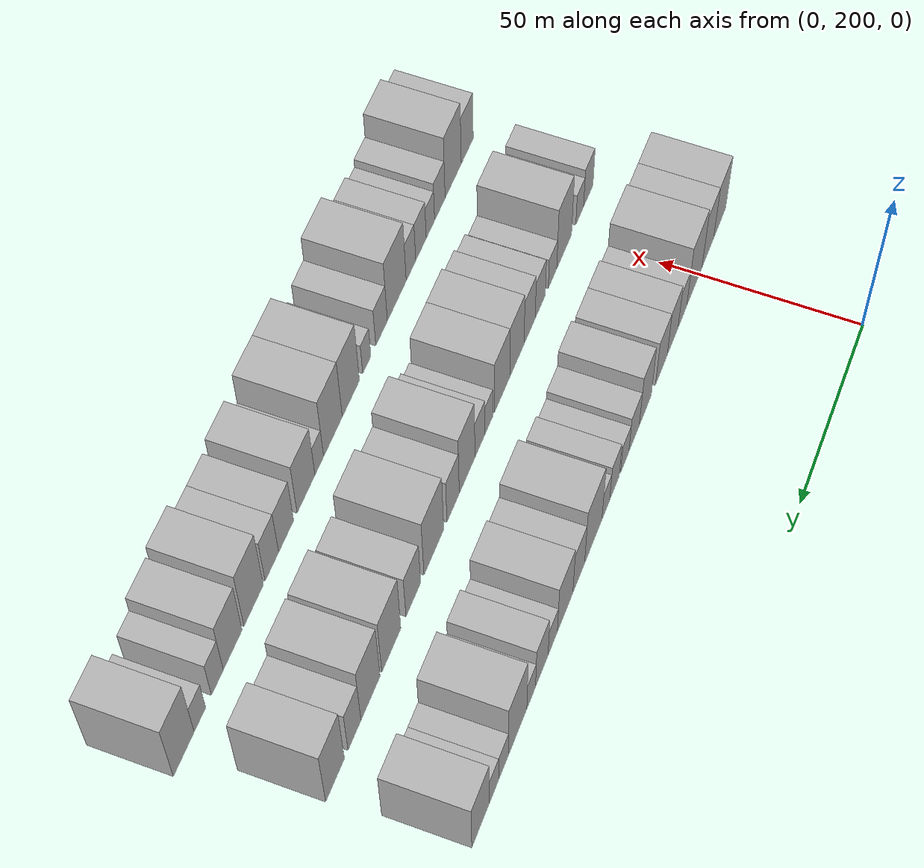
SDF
<sdf version="1.6">
 <world name="default">
  <model name="building_61">
   <static>1</static>
   <pose>50.0000 184.4445 0 0.000000 0.000000 0.000000</pose>
   <link name="link">
    <pose>0 0 10.50 0 0 0</pose>
    <collision name="collision"><geometry><box><size>20.0000 9.5456 21.0000</size></box></geometry></collision>
    <visual name="visual">
     <cast_shadows>0</cast_shadows>
     <geometry><box><size>20.0000 9.5456 21.0000</size></box></geometry>
     <material>
      <script>
       <uri>model://HANNAS_wall/materials/scripts</uri>
       <uri>model://HANNAS_wall/materials/textures</uri>
       <name>vrc/HANNAS_wall</name>
      </script>
     </material>
    </visual>
   </link>
  </model>
  <model name="building_62">
   <static>1</static>
   <pose>50.0000 193.6088 0 0.000000 0.000000 0.000000</pose>
   <link name="link">
    <pose>0 0 10.50 0 0 0</pose>
    <collision name="collision"><geometry><box><size>20.0000 8.7831 21.0000</size></box></geometry></collision>
    <visual name="visual">
     <cast_shadows>0</cast_shadows>
     <geometry><box><size>20.0000 8.7831 21.0000</size></box></geometry>
     <material>
      <script>
       <uri>model://HANNAS_wall/materials/scripts</uri>
       <uri>model://HANNAS_wall/materials/textures</uri>
       <name>vrc/HANNAS_wall</name>
      </script>
     </material>
    </visual>
   </link>
  </model>
  <model name="building_63">
   <static>1</static>
   <pose>50.0000 203.7745 0 0.000000 0.000000 0.000000</pose>
   <link name="link">
    <pose>0 0 12.00 0 0 0</pose>
    <collision name="collision"><geometry><box><size>20.0000 11.5485 24.0000</size></box></geometry></collision>
    <visual name="visual">
     <cast_shadows>0</cast_shadows>
     <geometry><box><size>20.0000 11.5485 24.0000</size></box></geometry>
     <material>
      <script>
       <uri>model://HANNAS_wall/materials/scripts</uri>
       <uri>model://HANNAS_wall/materials/textures</uri>
       <name>vrc/HANNAS_wall</name>
      </script>
     </material>
    </visual>
   </link>
  </model>
  <model name="building_64">
   <static>1</static>
   <pose>50.0000 212.7617 0 0.000000 0.000000 0.000000</pose>
   <link name="link">
    <pose>0 0 7.50 0 0 0</pose>
    <collision name="collision"><geometry><box><size>20.0000 6.4258 15.0000</size></box></geometry></collision>
    <visual name="visual">
     <cast_shadows>0</cast_shadows>
     <geometry><box><size>20.0000 6.4258 15.0000</size></box></geometry>
     <material>
      <script>
       <uri>model://HANNAS_wall/materials/scripts</uri>
       <uri>model://HANNAS_wall/materials/textures</uri>
       <name>vrc/HANNAS_wall</name>
      </script>
     </material>
    </visual>
   </link>
  </model>
  <model name="building_65">
   <static>1</static>
   <pose>50.0000 219.9266 0 0.000000 0.000000 0.000000</pose>
   <link name="link">
    <pose>0 0 9.00 0 0 0</pose>
    <collision name="collision"><geometry><box><size>20.0000 7.9040 18.0000</size></box></geometry></collision>
    <visual name="visual">
     <cast_shadows>0</cast_shadows>
     <geometry><box><size>20.0000 7.9040 18.0000</size></box></geometry>
     <material>
      <script>
       <uri>model://HANNAS_wall/materials/scripts</uri>
       <uri>model://HANNAS_wall/materials/textures</uri>
       <name>vrc/HANNAS_wall</name>
      </script>
     </material>
    </visual>
   </link>
  </model>
  <model name="building_66">
   <static>1</static>
   <pose>50.0000 228.1158 0 0.000000 0.000000 0.000000</pose>
   <link name="link">
    <pose>0 0 9.00 0 0 0</pose>
    <collision name="collision"><geometry><box><size>20.0000 8.4743 18.0000</size></box></geometry></collision>
    <visual name="visual">
     <cast_shadows>0</cast_shadows>
     <geometry><box><size>20.0000 8.4743 18.0000</size></box></geometry>
     <material>
      <script>
       <uri>model://HANNAS_wall/materials/scripts</uri>
       <uri>model://HANNAS_wall/materials/textures</uri>
       <name>vrc/HANNAS_wall</name>
      </script>
     </material>
    </visual>
   </link>
  </model>
  <model name="building_67">
   <static>1</static>
   <pose>50.0000 239.6521 0 0.000000 0.000000 0.000000</pose>
   <link name="link">
    <pose>0 0 10.50 0 0 0</pose>
    <collision name="collision"><geometry><box><size>20.0000 8.5982 21.0000</size></box></geometry></collision>
    <visual name="visual">
     <cast_shadows>0</cast_shadows>
     <geometry><box><size>20.0000 8.5982 21.0000</size></box></geometry>
     <material>
      <script>
       <uri>model://HANNAS_wall/materials/scripts</uri>
       <uri>model://HANNAS_wall/materials/textures</uri>
       <name>vrc/HANNAS_wall</name>
      </script>
     </material>
    </visual>
   </link>
  </model>
  <model name="building_68">
   <static>1</static>
   <pose>50.0000 247.5567 0 0.000000 0.000000 0.000000</pose>
   <link name="link">
    <pose>0 0 7.50 0 0 0</pose>
    <collision name="collision"><geometry><box><size>20.0000 7.2110 15.0000</size></box></geometry></collision>
    <visual name="visual">
     <cast_shadows>0</cast_shadows>
     <geometry><box><size>20.0000 7.2110 15.0000</size></box></geometry>
     <material>
      <script>
       <uri>model://HANNAS_wall/materials/scripts</uri>
       <uri>model://HANNAS_wall/materials/textures</uri>
       <name>vrc/HANNAS_wall</name>
      </script>
     </material>
    </visual>
   </link>
  </model>
  <model name="building_69">
   <static>1</static>
   <pose>50.0000 254.0438 0 0.000000 0.000000 0.000000</pose>
   <link name="link">
    <pose>0 0 6.00 0 0 0</pose>
    <collision name="collision"><geometry><box><size>20.0000 5.7632 12.0000</size></box></geometry></collision>
    <visual name="visual">
     <cast_shadows>0</cast_shadows>
     <geometry><box><size>20.0000 5.7632 12.0000</size></box></geometry>
     <material>
      <script>
       <uri>model://HANNAS_wall/materials/scripts</uri>
       <uri>model://HANNAS_wall/materials/textures</uri>
       <name>vrc/HANNAS_wall</name>
      </script>
     </material>
    </visual>
   </link>
  </model>
  <model name="building_70">
   <static>1</static>
   <pose>50.0000 261.1158 0 0.000000 0.000000 0.000000</pose>
   <link name="link">
    <pose>0 0 7.50 0 0 0</pose>
    <collision name="collision"><geometry><box><size>20.0000 6.3809 15.0000</size></box></geometry></collision>
    <visual name="visual">
     <cast_shadows>0</cast_shadows>
     <geometry><box><size>20.0000 6.3809 15.0000</size></box></geometry>
     <material>
      <script>
       <uri>model://HANNAS_wall/materials/scripts</uri>
       <uri>model://HANNAS_wall/materials/textures</uri>
       <name>vrc/HANNAS_wall</name>
      </script>
     </material>
    </visual>
   </link>
  </model>
  <model name="building_71">
   <static>1</static>
   <pose>50.0000 266.9462 0 0.000000 0.000000 0.000000</pose>
   <link name="link">
    <pose>0 0 6.00 0 0 0</pose>
    <collision name="collision"><geometry><box><size>20.0000 5.2798 12.0000</size></box></geometry></collision>
    <visual name="visual">
     <cast_shadows>0</cast_shadows>
     <geometry><box><size>20.0000 5.2798 12.0000</size></box></geometry>
     <material>
      <script>
       <uri>model://HANNAS_wall/materials/scripts</uri>
       <uri>model://HANNAS_wall/materials/textures</uri>
       <name>vrc/HANNAS_wall</name>
      </script>
     </material>
    </visual>
   </link>
  </model>
  <model name="building_72">
   <static>1</static>
   <pose>50.0000 275.3445 0 0.000000 0.000000 0.000000</pose>
   <link name="link">
    <pose>0 0 12.00 0 0 0</pose>
    <collision name="collision"><geometry><box><size>20.0000 11.5169 24.0000</size></box></geometry></collision>
    <visual name="visual">
     <cast_shadows>0</cast_shadows>
     <geometry><box><size>20.0000 11.5169 24.0000</size></box></geometry>
     <material>
      <script>
       <uri>model://HANNAS_wall/materials/scripts</uri>
       <uri>model://HANNAS_wall/materials/textures</uri>
       <name>vrc/HANNAS_wall</name>
      </script>
     </material>
    </visual>
   </link>
  </model>
  <model name="building_73">
   <static>1</static>
   <pose>50.0000 284.9292 0 0.000000 0.000000 0.000000</pose>
   <link name="link">
    <pose>0 0 9.00 0 0 0</pose>
    <collision name="collision"><geometry><box><size>20.0000 7.6525 18.0000</size></box></geometry></collision>
    <visual name="visual">
     <cast_shadows>0</cast_shadows>
     <geometry><box><size>20.0000 7.6525 18.0000</size></box></geometry>
     <material>
      <script>
       <uri>model://HANNAS_wall/materials/scripts</uri>
       <uri>model://HANNAS_wall/materials/textures</uri>
       <name>vrc/HANNAS_wall</name>
      </script>
     </material>
    </visual>
   </link>
  </model>
  <model name="building_74">
   <static>1</static>
   <pose>50.0000 293.7553 0 0.000000 0.000000 0.000000</pose>
   <link name="link">
    <pose>0 0 10.50 0 0 0</pose>
    <collision name="collision"><geometry><box><size>20.0000 9.9997 21.0000</size></box></geometry></collision>
    <visual name="visual">
     <cast_shadows>0</cast_shadows>
     <geometry><box><size>20.0000 9.9997 21.0000</size></box></geometry>
     <material>
      <script>
       <uri>model://HANNAS_wall/materials/scripts</uri>
       <uri>model://HANNAS_wall/materials/textures</uri>
       <name>vrc/HANNAS_wall</name>
      </script>
     </material>
    </visual>
   </link>
  </model>
  <model name="building_75">
   <static>1</static>
   <pose>50.0000 301.6766 0 0.000000 0.000000 0.000000</pose>
   <link name="link">
    <pose>0 0 6.00 0 0 0</pose>
    <collision name="collision"><geometry><box><size>20.0000 5.8428 12.0000</size></box></geometry></collision>
    <visual name="visual">
     <cast_shadows>0</cast_shadows>
     <geometry><box><size>20.0000 5.8428 12.0000</size></box></geometry>
     <material>
      <script>
       <uri>model://HANNAS_wall/materials/scripts</uri>
       <uri>model://HANNAS_wall/materials/textures</uri>
       <name>vrc/HANNAS_wall</name>
      </script>
     </material>
    </visual>
   </link>
  </model>
  <model name="building_76">
   <static>1</static>
   <pose>50.0000 308.5306 0 0.000000 0.000000 0.000000</pose>
   <link name="link">
    <pose>0 0 9.00 0 0 0</pose>
    <collision name="collision"><geometry><box><size>20.0000 7.8651 18.0000</size></box></geometry></collision>
    <visual name="visual">
     <cast_shadows>0</cast_shadows>
     <geometry><box><size>20.0000 7.8651 18.0000</size></box></geometry>
     <material>
      <script>
       <uri>model://HANNAS_wall/materials/scripts</uri>
       <uri>model://HANNAS_wall/materials/textures</uri>
       <name>vrc/HANNAS_wall</name>
      </script>
     </material>
    </visual>
   </link>
  </model>
  <model name="building_77">
   <static>1</static>
   <pose>50.0000 315.1608 0 0.000000 0.000000 0.000000</pose>
   <link name="link">
    <pose>0 0 6.00 0 0 0</pose>
    <collision name="collision"><geometry><box><size>20.0000 5.3953 12.0000</size></box></geometry></collision>
    <visual name="visual">
     <cast_shadows>0</cast_shadows>
     <geometry><box><size>20.0000 5.3953 12.0000</size></box></geometry>
     <material>
      <script>
       <uri>model://HANNAS_wall/materials/scripts</uri>
       <uri>model://HANNAS_wall/materials/textures</uri>
       <name>vrc/HANNAS_wall</name>
      </script>
     </material>
    </visual>
   </link>
  </model>
  <model name="building_78">
   <static>1</static>
   <pose>50.0000 323.4740 0 0.000000 0.000000 0.000000</pose>
   <link name="link">
    <pose>0 0 12.00 0 0 0</pose>
    <collision name="collision"><geometry><box><size>20.0000 11.2312 24.0000</size></box></geometry></collision>
    <visual name="visual">
     <cast_shadows>0</cast_shadows>
     <geometry><box><size>20.0000 11.2312 24.0000</size></box></geometry>
     <material>
      <script>
       <uri>model://HANNAS_wall/materials/scripts</uri>
       <uri>model://HANNAS_wall/materials/textures</uri>
       <name>vrc/HANNAS_wall</name>
      </script>
     </material>
    </visual>
   </link>
  </model>
  <model name="building_79">
   <static>1</static>
   <pose>50.0000 332.0207 0 0.000000 0.000000 0.000000</pose>
   <link name="link">
    <pose>0 0 6.00 0 0 0</pose>
    <collision name="collision"><geometry><box><size>20.0000 5.8622 12.0000</size></box></geometry></collision>
    <visual name="visual">
     <cast_shadows>0</cast_shadows>
     <geometry><box><size>20.0000 5.8622 12.0000</size></box></geometry>
     <material>
      <script>
       <uri>model://HANNAS_wall/materials/scripts</uri>
       <uri>model://HANNAS_wall/materials/textures</uri>
       <name>vrc/HANNAS_wall</name>
      </script>
     </material>
    </visual>
   </link>
  </model>
  <model name="building_80">
   <static>1</static>
   <pose>50.0000 337.6700 0 0.000000 0.000000 0.000000</pose>
   <link name="link">
    <pose>0 0 6.00 0 0 0</pose>
    <collision name="collision"><geometry><box><size>20.0000 5.4363 12.0000</size></box></geometry></collision>
    <visual name="visual">
     <cast_shadows>0</cast_shadows>
     <geometry><box><size>20.0000 5.4363 12.0000</size></box></geometry>
     <material>
      <script>
       <uri>model://HANNAS_wall/materials/scripts</uri>
       <uri>model://HANNAS_wall/materials/textures</uri>
       <name>vrc/HANNAS_wall</name>
      </script>
     </material>
    </visual>
   </link>
  </model>
  <model name="building_81">
   <static>1</static>
   <pose>50.0000 345.5345 0 0.000000 0.000000 0.000000</pose>
   <link name="link">
    <pose>0 0 10.50 0 0 0</pose>
    <collision name="collision"><geometry><box><size>20.0000 10.2925 21.0000</size></box></geometry></collision>
    <visual name="visual">
     <cast_shadows>0</cast_shadows>
     <geometry><box><size>20.0000 10.2925 21.0000</size></box></geometry>
     <material>
      <script>
       <uri>model://HANNAS_wall/materials/scripts</uri>
       <uri>model://HANNAS_wall/materials/textures</uri>
       <name>vrc/HANNAS_wall</name>
      </script>
     </material>
    </visual>
   </link>
  </model>
  <model name="building_140">
   <static>1</static>
   <pose>82.0000 187.9206 0 0.000000 0.000000 0.000000</pose>
   <link name="link">
    <pose>0 0 7.50 0 0 0</pose>
    <collision name="collision"><geometry><box><size>20.0000 6.8366 15.0000</size></box></geometry></collision>
    <visual name="visual">
     <cast_shadows>0</cast_shadows>
     <geometry><box><size>20.0000 6.8366 15.0000</size></box></geometry>
     <material>
      <script>
       <uri>model://HANNAS_wall/materials/scripts</uri>
       <uri>model://HANNAS_wall/materials/textures</uri>
       <name>vrc/HANNAS_wall</name>
      </script>
     </material>
    </visual>
   </link>
  </model>
  <model name="building_141">
   <static>1</static>
   <pose>82.0000 194.1145 0 0.000000 0.000000 0.000000</pose>
   <link name="link">
    <pose>0 0 6.00 0 0 0</pose>
    <collision name="collision"><geometry><box><size>20.0000 5.5513 12.0000</size></box></geometry></collision>
    <visual name="visual">
     <cast_shadows>0</cast_shadows>
     <geometry><box><size>20.0000 5.5513 12.0000</size></box></geometry>
     <material>
      <script>
       <uri>model://HANNAS_wall/materials/scripts</uri>
       <uri>model://HANNAS_wall/materials/textures</uri>
       <name>vrc/HANNAS_wall</name>
      </script>
     </material>
    </visual>
   </link>
  </model>
  <model name="building_142">
   <static>1</static>
   <pose>82.0000 205.0983 0 0.000000 0.000000 0.000000</pose>
   <link name="link">
    <pose>0 0 12.00 0 0 0</pose>
    <collision name="collision"><geometry><box><size>20.0000 10.4162 24.0000</size></box></geometry></collision>
    <visual name="visual">
     <cast_shadows>0</cast_shadows>
     <geometry><box><size>20.0000 10.4162 24.0000</size></box></geometry>
     <material>
      <script>
       <uri>model://HANNAS_wall/materials/scripts</uri>
       <uri>model://HANNAS_wall/materials/textures</uri>
       <name>vrc/HANNAS_wall</name>
      </script>
     </material>
    </visual>
   </link>
  </model>
  <model name="building_143">
   <static>1</static>
   <pose>82.0000 213.2416 0 0.000000 0.000000 0.000000</pose>
   <link name="link">
    <pose>0 0 6.00 0 0 0</pose>
    <collision name="collision"><geometry><box><size>20.0000 5.8705 12.0000</size></box></geometry></collision>
    <visual name="visual">
     <cast_shadows>0</cast_shadows>
     <geometry><box><size>20.0000 5.8705 12.0000</size></box></geometry>
     <material>
      <script>
       <uri>model://HANNAS_wall/materials/scripts</uri>
       <uri>model://HANNAS_wall/materials/textures</uri>
       <name>vrc/HANNAS_wall</name>
      </script>
     </material>
    </visual>
   </link>
  </model>
  <model name="building_144">
   <static>1</static>
   <pose>82.0000 221.6229 0 0.000000 0.000000 0.000000</pose>
   <link name="link">
    <pose>0 0 7.50 0 0 0</pose>
    <collision name="collision"><geometry><box><size>20.0000 6.8921 15.0000</size></box></geometry></collision>
    <visual name="visual">
     <cast_shadows>0</cast_shadows>
     <geometry><box><size>20.0000 6.8921 15.0000</size></box></geometry>
     <material>
      <script>
       <uri>model://HANNAS_wall/materials/scripts</uri>
       <uri>model://HANNAS_wall/materials/textures</uri>
       <name>vrc/HANNAS_wall</name>
      </script>
     </material>
    </visual>
   </link>
  </model>
  <model name="building_145">
   <static>1</static>
   <pose>82.0000 228.8286 0 0.000000 0.000000 0.000000</pose>
   <link name="link">
    <pose>0 0 9.00 0 0 0</pose>
    <collision name="collision"><geometry><box><size>20.0000 7.5194 18.0000</size></box></geometry></collision>
    <visual name="visual">
     <cast_shadows>0</cast_shadows>
     <geometry><box><size>20.0000 7.5194 18.0000</size></box></geometry>
     <material>
      <script>
       <uri>model://HANNAS_wall/materials/scripts</uri>
       <uri>model://HANNAS_wall/materials/textures</uri>
       <name>vrc/HANNAS_wall</name>
      </script>
     </material>
    </visual>
   </link>
  </model>
  <model name="building_146">
   <static>1</static>
   <pose>82.0000 237.3323 0 0.000000 0.000000 0.000000</pose>
   <link name="link">
    <pose>0 0 10.50 0 0 0</pose>
    <collision name="collision"><geometry><box><size>20.0000 9.4879 21.0000</size></box></geometry></collision>
    <visual name="visual">
     <cast_shadows>0</cast_shadows>
     <geometry><box><size>20.0000 9.4879 21.0000</size></box></geometry>
     <material>
      <script>
       <uri>model://HANNAS_wall/materials/scripts</uri>
       <uri>model://HANNAS_wall/materials/textures</uri>
       <name>vrc/HANNAS_wall</name>
      </script>
     </material>
    </visual>
   </link>
  </model>
  <model name="building_147">
   <static>1</static>
   <pose>82.0000 247.1323 0 0.000000 0.000000 0.000000</pose>
   <link name="link">
    <pose>0 0 10.50 0 0 0</pose>
    <collision name="collision"><geometry><box><size>20.0000 10.1121 21.0000</size></box></geometry></collision>
    <visual name="visual">
     <cast_shadows>0</cast_shadows>
     <geometry><box><size>20.0000 10.1121 21.0000</size></box></geometry>
     <material>
      <script>
       <uri>model://HANNAS_wall/materials/scripts</uri>
       <uri>model://HANNAS_wall/materials/textures</uri>
       <name>vrc/HANNAS_wall</name>
      </script>
     </material>
    </visual>
   </link>
  </model>
  <model name="building_148">
   <static>1</static>
   <pose>82.0000 255.6846 0 0.000000 0.000000 0.000000</pose>
   <link name="link">
    <pose>0 0 6.00 0 0 0</pose>
    <collision name="collision"><geometry><box><size>20.0000 4.9925 12.0000</size></box></geometry></collision>
    <visual name="visual">
     <cast_shadows>0</cast_shadows>
     <geometry><box><size>20.0000 4.9925 12.0000</size></box></geometry>
     <material>
      <script>
       <uri>model://HANNAS_wall/materials/scripts</uri>
       <uri>model://HANNAS_wall/materials/textures</uri>
       <name>vrc/HANNAS_wall</name>
      </script>
     </material>
    </visual>
   </link>
  </model>
  <model name="building_149">
   <static>1</static>
   <pose>82.0000 261.3965 0 0.000000 0.000000 0.000000</pose>
   <link name="link">
    <pose>0 0 7.50 0 0 0</pose>
    <collision name="collision"><geometry><box><size>20.0000 6.4314 15.0000</size></box></geometry></collision>
    <visual name="visual">
     <cast_shadows>0</cast_shadows>
     <geometry><box><size>20.0000 6.4314 15.0000</size></box></geometry>
     <material>
      <script>
       <uri>model://HANNAS_wall/materials/scripts</uri>
       <uri>model://HANNAS_wall/materials/textures</uri>
       <name>vrc/HANNAS_wall</name>
      </script>
     </material>
    </visual>
   </link>
  </model>
  <model name="building_150">
   <static>1</static>
   <pose>82.0000 269.5343 0 0.000000 0.000000 0.000000</pose>
   <link name="link">
    <pose>0 0 12.00 0 0 0</pose>
    <collision name="collision"><geometry><box><size>20.0000 9.8444 24.0000</size></box></geometry></collision>
    <visual name="visual">
     <cast_shadows>0</cast_shadows>
     <geometry><box><size>20.0000 9.8444 24.0000</size></box></geometry>
     <material>
      <script>
       <uri>model://HANNAS_wall/materials/scripts</uri>
       <uri>model://HANNAS_wall/materials/textures</uri>
       <name>vrc/HANNAS_wall</name>
      </script>
     </material>
    </visual>
   </link>
  </model>
  <model name="building_151">
   <static>1</static>
   <pose>82.0000 278.2891 0 0.000000 0.000000 0.000000</pose>
   <link name="link">
    <pose>0 0 9.00 0 0 0</pose>
    <collision name="collision"><geometry><box><size>20.0000 7.6652 18.0000</size></box></geometry></collision>
    <visual name="visual">
     <cast_shadows>0</cast_shadows>
     <geometry><box><size>20.0000 7.6652 18.0000</size></box></geometry>
     <material>
      <script>
       <uri>model://HANNAS_wall/materials/scripts</uri>
       <uri>model://HANNAS_wall/materials/textures</uri>
       <name>vrc/HANNAS_wall</name>
      </script>
     </material>
    </visual>
   </link>
  </model>
  <model name="building_152">
   <static>1</static>
   <pose>82.0000 290.0989 0 0.000000 0.000000 0.000000</pose>
   <link name="link">
    <pose>0 0 12.00 0 0 0</pose>
    <collision name="collision"><geometry><box><size>20.0000 11.9542 24.0000</size></box></geometry></collision>
    <visual name="visual">
     <cast_shadows>0</cast_shadows>
     <geometry><box><size>20.0000 11.9542 24.0000</size></box></geometry>
     <material>
      <script>
       <uri>model://HANNAS_wall/materials/scripts</uri>
       <uri>model://HANNAS_wall/materials/textures</uri>
       <name>vrc/HANNAS_wall</name>
      </script>
     </material>
    </visual>
   </link>
  </model>
  <model name="building_153">
   <static>1</static>
   <pose>82.0000 302.4233 0 0.000000 0.000000 0.000000</pose>
   <link name="link">
    <pose>0 0 9.00 0 0 0</pose>
    <collision name="collision"><geometry><box><size>20.0000 8.6946 18.0000</size></box></geometry></collision>
    <visual name="visual">
     <cast_shadows>0</cast_shadows>
     <geometry><box><size>20.0000 8.6946 18.0000</size></box></geometry>
     <material>
      <script>
       <uri>model://HANNAS_wall/materials/scripts</uri>
       <uri>model://HANNAS_wall/materials/textures</uri>
       <name>vrc/HANNAS_wall</name>
      </script>
     </material>
    </visual>
   </link>
  </model>
  <model name="building_154">
   <static>1</static>
   <pose>82.0000 315.2797 0 0.000000 0.000000 0.000000</pose>
   <link name="link">
    <pose>0 0 12.00 0 0 0</pose>
    <collision name="collision"><geometry><box><size>20.0000 11.0183 24.0000</size></box></geometry></collision>
    <visual name="visual">
     <cast_shadows>0</cast_shadows>
     <geometry><box><size>20.0000 11.0183 24.0000</size></box></geometry>
     <material>
      <script>
       <uri>model://HANNAS_wall/materials/scripts</uri>
       <uri>model://HANNAS_wall/materials/textures</uri>
       <name>vrc/HANNAS_wall</name>
      </script>
     </material>
    </visual>
   </link>
  </model>
  <model name="building_155">
   <static>1</static>
   <pose>82.0000 327.1926 0 0.000000 0.000000 0.000000</pose>
   <link name="link">
    <pose>0 0 12.00 0 0 0</pose>
    <collision name="collision"><geometry><box><size>20.0000 10.8074 24.0000</size></box></geometry></collision>
    <visual name="visual">
     <cast_shadows>0</cast_shadows>
     <geometry><box><size>20.0000 10.8074 24.0000</size></box></geometry>
     <material>
      <script>
       <uri>model://HANNAS_wall/materials/scripts</uri>
       <uri>model://HANNAS_wall/materials/textures</uri>
       <name>vrc/HANNAS_wall</name>
      </script>
     </material>
    </visual>
   </link>
  </model>
  <model name="building_156">
   <static>1</static>
   <pose>82.0000 336.2074 0 0.000000 0.000000 0.000000</pose>
   <link name="link">
    <pose>0 0 9.00 0 0 0</pose>
    <collision name="collision"><geometry><box><size>20.0000 7.2224 18.0000</size></box></geometry></collision>
    <visual name="visual">
     <cast_shadows>0</cast_shadows>
     <geometry><box><size>20.0000 7.2224 18.0000</size></box></geometry>
     <material>
      <script>
       <uri>model://HANNAS_wall/materials/scripts</uri>
       <uri>model://HANNAS_wall/materials/textures</uri>
       <name>vrc/HANNAS_wall</name>
      </script>
     </material>
    </visual>
   </link>
  </model>
  <model name="building_157">
   <static>1</static>
   <pose>82.0000 346.9380 0 0.000000 0.000000 0.000000</pose>
   <link name="link">
    <pose>0 0 12.00 0 0 0</pose>
    <collision name="collision"><geometry><box><size>20.0000 10.2388 24.0000</size></box></geometry></collision>
    <visual name="visual">
     <cast_shadows>0</cast_shadows>
     <geometry><box><size>20.0000 10.2388 24.0000</size></box></geometry>
     <material>
      <script>
       <uri>model://HANNAS_wall/materials/scripts</uri>
       <uri>model://HANNAS_wall/materials/textures</uri>
       <name>vrc/HANNAS_wall</name>
      </script>
     </material>
    </visual>
   </link>
  </model>
  <model name="building_217">
   <static>1</static>
   <pose>114.0000 185.6625 0 0.000000 0.000000 0.000000</pose>
   <link name="link">
    <pose>0 0 9.00 0 0 0</pose>
    <collision name="collision"><geometry><box><size>20.0000 8.1709 18.0000</size></box></geometry></collision>
    <visual name="visual">
     <cast_shadows>0</cast_shadows>
     <geometry><box><size>20.0000 8.1709 18.0000</size></box></geometry>
     <material>
      <script>
       <uri>model://HANNAS_wall/materials/scripts</uri>
       <uri>model://HANNAS_wall/materials/textures</uri>
       <name>vrc/HANNAS_wall</name>
      </script>
     </material>
    </visual>
   </link>
  </model>
  <model name="building_218">
   <static>1</static>
   <pose>114.0000 195.1572 0 0.000000 0.000000 0.000000</pose>
   <link name="link">
    <pose>0 0 12.00 0 0 0</pose>
    <collision name="collision"><geometry><box><size>20.0000 10.8185 24.0000</size></box></geometry></collision>
    <visual name="visual">
     <cast_shadows>0</cast_shadows>
     <geometry><box><size>20.0000 10.8185 24.0000</size></box></geometry>
     <material>
      <script>
       <uri>model://HANNAS_wall/materials/scripts</uri>
       <uri>model://HANNAS_wall/materials/textures</uri>
       <name>vrc/HANNAS_wall</name>
      </script>
     </material>
    </visual>
   </link>
  </model>
  <model name="building_219">
   <static>1</static>
   <pose>114.0000 204.0469 0 0.000000 0.000000 0.000000</pose>
   <link name="link">
    <pose>0 0 7.50 0 0 0</pose>
    <collision name="collision"><geometry><box><size>20.0000 6.9608 15.0000</size></box></geometry></collision>
    <visual name="visual">
     <cast_shadows>0</cast_shadows>
     <geometry><box><size>20.0000 6.9608 15.0000</size></box></geometry>
     <material>
      <script>
       <uri>model://HANNAS_wall/materials/scripts</uri>
       <uri>model://HANNAS_wall/materials/textures</uri>
       <name>vrc/HANNAS_wall</name>
      </script>
     </material>
    </visual>
   </link>
  </model>
  <model name="building_220">
   <static>1</static>
   <pose>114.0000 210.2873 0 0.000000 0.000000 0.000000</pose>
   <link name="link">
    <pose>0 0 6.00 0 0 0</pose>
    <collision name="collision"><geometry><box><size>20.0000 5.5200 12.0000</size></box></geometry></collision>
    <visual name="visual">
     <cast_shadows>0</cast_shadows>
     <geometry><box><size>20.0000 5.5200 12.0000</size></box></geometry>
     <material>
      <script>
       <uri>model://HANNAS_wall/materials/scripts</uri>
       <uri>model://HANNAS_wall/materials/textures</uri>
       <name>vrc/HANNAS_wall</name>
      </script>
     </material>
    </visual>
   </link>
  </model>
  <model name="building_221">
   <static>1</static>
   <pose>114.0000 216.4406 0 0.000000 0.000000 0.000000</pose>
   <link name="link">
    <pose>0 0 7.50 0 0 0</pose>
    <collision name="collision"><geometry><box><size>20.0000 6.7867 15.0000</size></box></geometry></collision>
    <visual name="visual">
     <cast_shadows>0</cast_shadows>
     <geometry><box><size>20.0000 6.7867 15.0000</size></box></geometry>
     <material>
      <script>
       <uri>model://HANNAS_wall/materials/scripts</uri>
       <uri>model://HANNAS_wall/materials/textures</uri>
       <name>vrc/HANNAS_wall</name>
      </script>
     </material>
    </visual>
   </link>
  </model>
  <model name="building_222">
   <static>1</static>
   <pose>114.0000 222.8750 0 0.000000 0.000000 0.000000</pose>
   <link name="link">
    <pose>0 0 7.50 0 0 0</pose>
    <collision name="collision"><geometry><box><size>20.0000 6.0820 15.0000</size></box></geometry></collision>
    <visual name="visual">
     <cast_shadows>0</cast_shadows>
     <geometry><box><size>20.0000 6.0820 15.0000</size></box></geometry>
     <material>
      <script>
       <uri>model://HANNAS_wall/materials/scripts</uri>
       <uri>model://HANNAS_wall/materials/textures</uri>
       <name>vrc/HANNAS_wall</name>
      </script>
     </material>
    </visual>
   </link>
  </model>
  <model name="building_223">
   <static>1</static>
   <pose>114.0000 231.8820 0 0.000000 0.000000 0.000000</pose>
   <link name="link">
    <pose>0 0 12.00 0 0 0</pose>
    <collision name="collision"><geometry><box><size>20.0000 11.9321 24.0000</size></box></geometry></collision>
    <visual name="visual">
     <cast_shadows>0</cast_shadows>
     <geometry><box><size>20.0000 11.9321 24.0000</size></box></geometry>
     <material>
      <script>
       <uri>model://HANNAS_wall/materials/scripts</uri>
       <uri>model://HANNAS_wall/materials/textures</uri>
       <name>vrc/HANNAS_wall</name>
      </script>
     </material>
    </visual>
   </link>
  </model>
  <model name="building_224">
   <static>1</static>
   <pose>114.0000 241.4530 0 0.000000 0.000000 0.000000</pose>
   <link name="link">
    <pose>0 0 7.50 0 0 0</pose>
    <collision name="collision"><geometry><box><size>20.0000 7.2100 15.0000</size></box></geometry></collision>
    <visual name="visual">
     <cast_shadows>0</cast_shadows>
     <geometry><box><size>20.0000 7.2100 15.0000</size></box></geometry>
     <material>
      <script>
       <uri>model://HANNAS_wall/materials/scripts</uri>
       <uri>model://HANNAS_wall/materials/textures</uri>
       <name>vrc/HANNAS_wall</name>
      </script>
     </material>
    </visual>
   </link>
  </model>
  <model name="building_225">
   <static>1</static>
   <pose>114.0000 250.5569 0 0.000000 0.000000 0.000000</pose>
   <link name="link">
    <pose>0 0 6.00 0 0 0</pose>
    <collision name="collision"><geometry><box><size>20.0000 4.9978 12.0000</size></box></geometry></collision>
    <visual name="visual">
     <cast_shadows>0</cast_shadows>
     <geometry><box><size>20.0000 4.9978 12.0000</size></box></geometry>
     <material>
      <script>
       <uri>model://HANNAS_wall/materials/scripts</uri>
       <uri>model://HANNAS_wall/materials/textures</uri>
       <name>vrc/HANNAS_wall</name>
      </script>
     </material>
    </visual>
   </link>
  </model>
  <model name="building_226">
   <static>1</static>
   <pose>114.0000 260.2181 0 0.000000 0.000000 0.000000</pose>
   <link name="link">
    <pose>0 0 12.00 0 0 0</pose>
    <collision name="collision"><geometry><box><size>20.0000 10.3246 24.0000</size></box></geometry></collision>
    <visual name="visual">
     <cast_shadows>0</cast_shadows>
     <geometry><box><size>20.0000 10.3246 24.0000</size></box></geometry>
     <material>
      <script>
       <uri>model://HANNAS_wall/materials/scripts</uri>
       <uri>model://HANNAS_wall/materials/textures</uri>
       <name>vrc/HANNAS_wall</name>
      </script>
     </material>
    </visual>
   </link>
  </model>
  <model name="building_227">
   <static>1</static>
   <pose>114.0000 270.8940 0 0.000000 0.000000 0.000000</pose>
   <link name="link">
    <pose>0 0 12.00 0 0 0</pose>
    <collision name="collision"><geometry><box><size>20.0000 11.0271 24.0000</size></box></geometry></collision>
    <visual name="visual">
     <cast_shadows>0</cast_shadows>
     <geometry><box><size>20.0000 11.0271 24.0000</size></box></geometry>
     <material>
      <script>
       <uri>model://HANNAS_wall/materials/scripts</uri>
       <uri>model://HANNAS_wall/materials/textures</uri>
       <name>vrc/HANNAS_wall</name>
      </script>
     </material>
    </visual>
   </link>
  </model>
  <model name="building_228">
   <static>1</static>
   <pose>114.0000 278.9377 0 0.000000 0.000000 0.000000</pose>
   <link name="link">
    <pose>0 0 6.00 0 0 0</pose>
    <collision name="collision"><geometry><box><size>20.0000 5.0603 12.0000</size></box></geometry></collision>
    <visual name="visual">
     <cast_shadows>0</cast_shadows>
     <geometry><box><size>20.0000 5.0603 12.0000</size></box></geometry>
     <material>
      <script>
       <uri>model://HANNAS_wall/materials/scripts</uri>
       <uri>model://HANNAS_wall/materials/textures</uri>
       <name>vrc/HANNAS_wall</name>
      </script>
     </material>
    </visual>
   </link>
  </model>
  <model name="building_229">
   <static>1</static>
   <pose>114.0000 286.5866 0 0.000000 0.000000 0.000000</pose>
   <link name="link">
    <pose>0 0 10.50 0 0 0</pose>
    <collision name="collision"><geometry><box><size>20.0000 10.2375 21.0000</size></box></geometry></collision>
    <visual name="visual">
     <cast_shadows>0</cast_shadows>
     <geometry><box><size>20.0000 10.2375 21.0000</size></box></geometry>
     <material>
      <script>
       <uri>model://HANNAS_wall/materials/scripts</uri>
       <uri>model://HANNAS_wall/materials/textures</uri>
       <name>vrc/HANNAS_wall</name>
      </script>
     </material>
    </visual>
   </link>
  </model>
  <model name="building_230">
   <static>1</static>
   <pose>114.0000 297.9112 0 0.000000 0.000000 0.000000</pose>
   <link name="link">
    <pose>0 0 9.00 0 0 0</pose>
    <collision name="collision"><geometry><box><size>20.0000 8.4118 18.0000</size></box></geometry></collision>
    <visual name="visual">
     <cast_shadows>0</cast_shadows>
     <geometry><box><size>20.0000 8.4118 18.0000</size></box></geometry>
     <material>
      <script>
       <uri>model://HANNAS_wall/materials/scripts</uri>
       <uri>model://HANNAS_wall/materials/textures</uri>
       <name>vrc/HANNAS_wall</name>
      </script>
     </material>
    </visual>
   </link>
  </model>
  <model name="building_231">
   <static>1</static>
   <pose>114.0000 305.8833 0 0.000000 0.000000 0.000000</pose>
   <link name="link">
    <pose>0 0 9.00 0 0 0</pose>
    <collision name="collision"><geometry><box><size>20.0000 7.5322 18.0000</size></box></geometry></collision>
    <visual name="visual">
     <cast_shadows>0</cast_shadows>
     <geometry><box><size>20.0000 7.5322 18.0000</size></box></geometry>
     <material>
      <script>
       <uri>model://HANNAS_wall/materials/scripts</uri>
       <uri>model://HANNAS_wall/materials/textures</uri>
       <name>vrc/HANNAS_wall</name>
      </script>
     </material>
    </visual>
   </link>
  </model>
  <model name="building_232">
   <static>1</static>
   <pose>114.0000 315.9260 0 0.000000 0.000000 0.000000</pose>
   <link name="link">
    <pose>0 0 12.00 0 0 0</pose>
    <collision name="collision"><geometry><box><size>20.0000 10.5533 24.0000</size></box></geometry></collision>
    <visual name="visual">
     <cast_shadows>0</cast_shadows>
     <geometry><box><size>20.0000 10.5533 24.0000</size></box></geometry>
     <material>
      <script>
       <uri>model://HANNAS_wall/materials/scripts</uri>
       <uri>model://HANNAS_wall/materials/textures</uri>
       <name>vrc/HANNAS_wall</name>
      </script>
     </material>
    </visual>
   </link>
  </model>
  <model name="building_233">
   <static>1</static>
   <pose>114.0000 327.2244 0 0.000000 0.000000 0.000000</pose>
   <link name="link">
    <pose>0 0 10.50 0 0 0</pose>
    <collision name="collision"><geometry><box><size>20.0000 10.0436 21.0000</size></box></geometry></collision>
    <visual name="visual">
     <cast_shadows>0</cast_shadows>
     <geometry><box><size>20.0000 10.0436 21.0000</size></box></geometry>
     <material>
      <script>
       <uri>model://HANNAS_wall/materials/scripts</uri>
       <uri>model://HANNAS_wall/materials/textures</uri>
       <name>vrc/HANNAS_wall</name>
      </script>
     </material>
    </visual>
   </link>
  </model>
  <model name="building_234">
   <static>1</static>
   <pose>114.0000 335.3623 0 0.000000 0.000000 0.000000</pose>
   <link name="link">
    <pose>0 0 7.50 0 0 0</pose>
    <collision name="collision"><geometry><box><size>20.0000 6.2321 15.0000</size></box></geometry></collision>
    <visual name="visual">
     <cast_shadows>0</cast_shadows>
     <geometry><box><size>20.0000 6.2321 15.0000</size></box></geometry>
     <material>
      <script>
       <uri>model://HANNAS_wall/materials/scripts</uri>
       <uri>model://HANNAS_wall/materials/textures</uri>
       <name>vrc/HANNAS_wall</name>
      </script>
     </material>
    </visual>
   </link>
  </model>
  <model name="building_235">
   <static>1</static>
   <pose>114.0000 344.4592 0 0.000000 0.000000 0.000000</pose>
   <link name="link">
    <pose>0 0 6.00 0 0 0</pose>
    <collision name="collision"><geometry><box><size>20.0000 5.9617 12.0000</size></box></geometry></collision>
    <visual name="visual">
     <cast_shadows>0</cast_shadows>
     <geometry><box><size>20.0000 5.9617 12.0000</size></box></geometry>
     <material>
      <script>
       <uri>model://HANNAS_wall/materials/scripts</uri>
       <uri>model://HANNAS_wall/materials/textures</uri>
       <name>vrc/HANNAS_wall</name>
      </script>
     </material>
    </visual>
   </link>
  </model>
  <model name="building_236">
   <static>1</static>
   <pose>114.0000 352.7556 0 0.000000 0.000000 0.000000</pose>
   <link name="link">
    <pose>0 0 12.00 0 0 0</pose>
    <collision name="collision"><geometry><box><size>20.0000 10.6313 24.0000</size></box></geometry></collision>
    <visual name="visual">
     <cast_shadows>0</cast_shadows>
     <geometry><box><size>20.0000 10.6313 24.0000</size></box></geometry>
     <material>
      <script>
       <uri>model://HANNAS_wall/materials/scripts</uri>
       <uri>model://HANNAS_wall/materials/textures</uri>
       <name>vrc/HANNAS_wall</name>
      </script>
     </material>
    </visual>
   </link>
  </model>
 </world>
</sdf>
